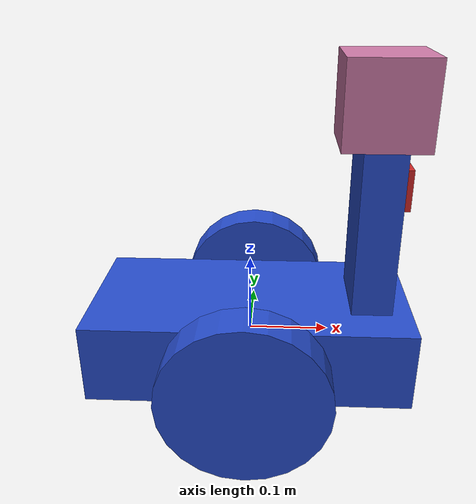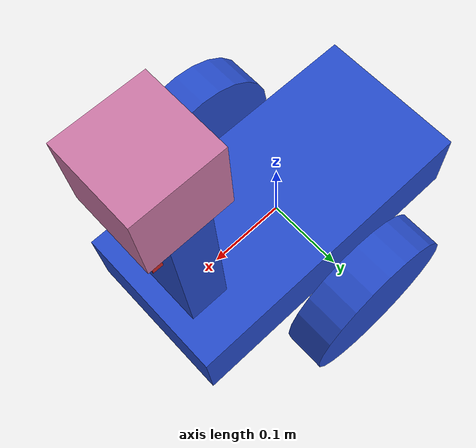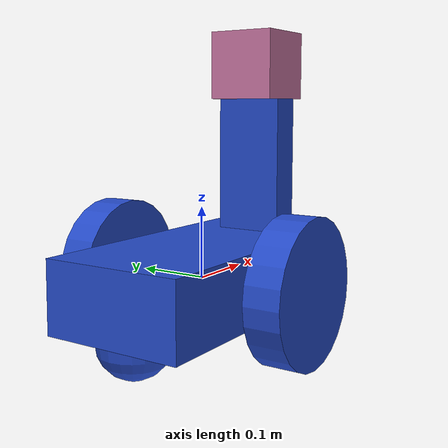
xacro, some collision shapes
<?xml version='1.0'?>

<robot name="my_bot" xmlns:xacro="http://www.ros.org/wiki/xacro">

  <!-- import plugins for camera and LiDAR defined in the .gazebo file -->
  <!-- my_bot.gazebo file includes the following plugins:
    1. A plugin for the camera sensor.
    2. A plugin for the hokuyo sensor.
    3. A plugin for controlling the wheel joints. -->
  <xacro:include filename="$(find my_bot)/urdf/my_bot.gazebo" />

  <link name="robot_footprint"></link>

  <joint name="robot_footprint_joint" type="fixed">
    <origin xyz="0 0 0" rpy="0 0 0" />
    <parent link="robot_footprint"/>
    <child link="chassis" />
  </joint>

  <!-- chassis and caster link -->
  <link name='chassis'>
    <pose>0 0 0.1 0 0 0</pose>

    <inertial>
      <mass value="15.0"/>
      <origin xyz="0.0 0 0" rpy=" 0 0 0"/>
      <inertia
          ixx="0.1" ixy="0" ixz="0"
          iyy="0.1" iyz="0"
          izz="0.1"
      />
    </inertial>

    <collision name='collision'>
      <origin xyz="0 0 0" rpy=" 0 0 0"/>
      <geometry>
        <box size=".4 .2 .1"/>
      </geometry>
    </collision>

    <visual name='chassis_visual'>
      <origin xyz="0 0 0" rpy=" 0 0 0"/>
      <geometry>
        <box size=".4 .2 .1"/>
      </geometry>
    </visual>

    <collision name='back_caster_collision'>
      <origin xyz="-0.15 0 -0.05" rpy=" 0 0 0"/>
      <geometry>
        <sphere radius="0.0499"/>
      </geometry>
    </collision>

    <visual name='back_caster_visual'>
      <origin xyz="-0.15 0 -0.05" rpy=" 0 0 0"/>
      <geometry>
        <sphere radius="0.05"/>
      </geometry>
    </visual>

    <collision name='front_caster_collision'>
      <origin xyz="0.15 0 -0.05" rpy=" 0 0 0"/>
      <geometry>
        <sphere radius="0.0499"/>
      </geometry>
    </collision>

    <visual name='front_caster_visual'>
      <origin xyz="0.15 0 -0.05" rpy=" 0 0 0"/>
      <geometry>
        <sphere radius="0.05"/>
      </geometry>
    </visual>

  </link>

  <!-- LiDAR-mount link -->
  <link name='LiDAR_mount'>
    <pose>0 0 0.1 0 0 0</pose>

    <inertial>
      <mass value="1.0"/>
      <origin xyz="0.0 0 0" rpy=" 0 0 0"/>
      <inertia
          ixx="0.1" ixy="0" ixz="0"
          iyy="0.1" iyz="0"
          izz="0.1"
      />
    </inertial>

    <collision name='LiDAR_mount_collision'>
      <origin xyz="0.15 0 0.15" rpy=" 0 0 0"/>
      <geometry>
        <box size="0.05 0.1 0.2"/>
      </geometry>
    </collision>

    <visual name='LiDAR_mount_visual'>
      <origin xyz="0.15 0 0.15" rpy=" 0 0 0"/>
      <geometry>
        <box size="0.05 0.1 0.2"/>
      </geometry>
    </visual>
  </link>

  <!-- left-wheel link -->
  <link name='left_wheel'>

    <inertial>
      <mass value="5.0"/>
      <origin xyz="0 0 0" rpy="0 1.5707 1.5707"/>
      <inertia
          ixx="0.1" ixy="0" ixz="0"
          iyy="0.1" iyz="0"
          izz="0.1"
      />
    </inertial>

    <collision name='left_wheel_collision'>
      <origin xyz="0 0 0" rpy="0 1.5707 1.5707"/>
      <geometry>
        <cylinder length="0.05" radius="0.1"/>
      </geometry>
    </collision>

    <visual name='left_wheel_visual'>
      <origin xyz="0 0 0" rpy="0 1.5707 1.5707"/>
      <geometry>
        <cylinder length="0.05" radius="0.1"/>
      </geometry>
    </visual>

  </link>

  <!-- right-wheel link -->
  <link name='right_wheel'>

    <inertial>
      <mass value="5.0"/>
      <origin xyz="0 0 0" rpy="0 1.5707 1.5707"/>
      <inertia
          ixx="0.1" ixy="0" ixz="0"
          iyy="0.1" iyz="0"
          izz="0.1"
      />
    </inertial>

    <collision name='right_wheel_collision'>
      <origin xyz="0 0 0" rpy="0 1.5707 1.5707"/>
      <geometry>
        <cylinder length="0.05" radius="0.1"/>
      </geometry>
    </collision>

    <visual name='right_wheel_visual'>
      <origin xyz="0 0 0" rpy="0 1.5707 1.5707"/>
      <geometry>
        <cylinder length="0.05" radius="0.1"/>
      </geometry>
    </visual>

  </link>

  <!-- camera link -->
  <link name='camera'>

    <inertial>
      <mass value="0.1"/>
      <origin xyz="0 0 0" rpy="0 0 0"/>
      <inertia
          ixx="1e-6" ixy="0" ixz="0"
          iyy="1e-6" iyz="0"
          izz="1e-6"
      />
    </inertial>

    <collision name='camera_collision'>
      <origin xyz="0 0 0" rpy="0 0 0"/>
      <geometry>
        <box size="0.025 0.05 0.05"/>
      </geometry>
    </collision>

    <visual name='camera_visual'>
      <origin xyz="0 0 0" rpy="0 0 0"/>
      <geometry>
        <box size="0.025 0.05 0.05"/>
      </geometry>
    </visual>

  </link>

  <!-- LiDAR link -->
  <link name='hokuyo'>

    <inertial>
      <mass value="0.1"/>
      <origin xyz="0 0 0" rpy=" 0 0 0"/>
      <inertia
          ixx="1e-6" ixy="0" ixz="0"
          iyy="1e-6" iyz="0"
          izz="1e-6"
      />
    </inertial>

    <collision name='hokuyo_collision'>
      <origin xyz="0 0 0" rpy=" 0 0 0"/>
      <geometry>
        <box size="0.1 0.1 0.1"/>
      </geometry>
    </collision>

    <visual name='hokuyo_visual'>
      <origin xyz="0 0 0" rpy=" 0 0 0"/>
      <geometry>
        <mesh filename="package://my_bot/meshes/hokuyo.dae"/>
      </geometry>
    </visual>

  </link>

  <!-- LiDAR-mount joint -->
  <joint name="LiDAR_mount_hinge" type="continuous">
    <origin xyz="0 0 0" rpy="0 0 0"/>
    <child link="LiDAR_mount"/>
    <parent link="chassis"/>
    <axis xyz="0 1 0" rpy="0 0 0"/>
    <limit effort="10000" velocity="1000"/>
    <joint_properties damping="1.0" friction="1.0"/>
  </joint>
  <!-- left-wheel joint -->
  <joint name="left_wheel_hinge" type="continuous">
    <origin xyz="0 0.15 0" rpy="0 0 0"/>
    <child link="left_wheel"/>
    <parent link="chassis"/>
    <axis xyz="0 1 0" rpy="0 0 0"/>
    <limit effort="10000" velocity="1000"/>
    <joint_properties damping="1.0" friction="1.0"/>
  </joint>
  <!-- right-wheel joint -->
  <joint name="right_wheel_hinge" type="continuous" >
    <origin xyz="0 -0.15 0" rpy="0 0 0"/>
    <child link="right_wheel"/>
    <parent link="chassis"/>
    <axis xyz="0 1 0" rpy="0 0 0"/>
    <limit effort="10000" velocity="1000"/>
    <joint_properties damping="1.0" friction="1.0"/>
  </joint>
  <!-- Camera joint -->
  <joint name="camera_joint" type="fixed">
    <origin xyz="0.175 0 0.2" rpy="0 0 0"/>
    <child link="camera"/>
    <parent link="chassis"/>
    <limit effort="10000" velocity="1000"/>
    <joint_properties damping="1.0" friction="1.0"/>
  </joint>
  <!-- LiDAR joint -->
  <joint name="hokuyo_joint" type="fixed">
    <origin xyz="0.15 0 0.3" rpy="0 0 0"/>
    <child link="hokuyo"/>
    <parent link="chassis"/>
    <limit effort="10000" velocity="1000"/>
    <joint_properties damping="1.0" friction="1.0"/>
  </joint>

</robot>
